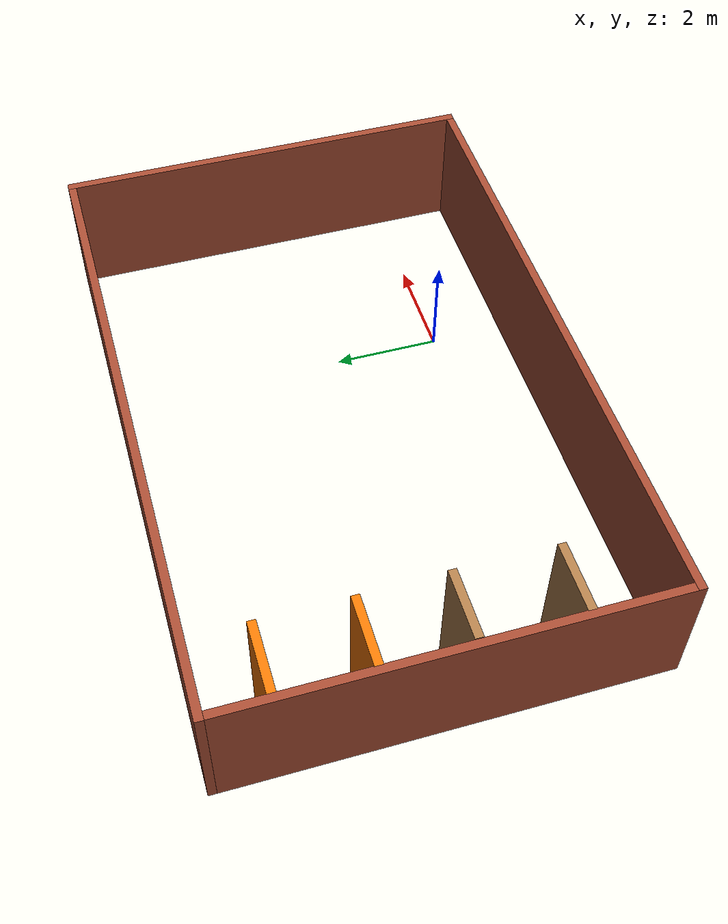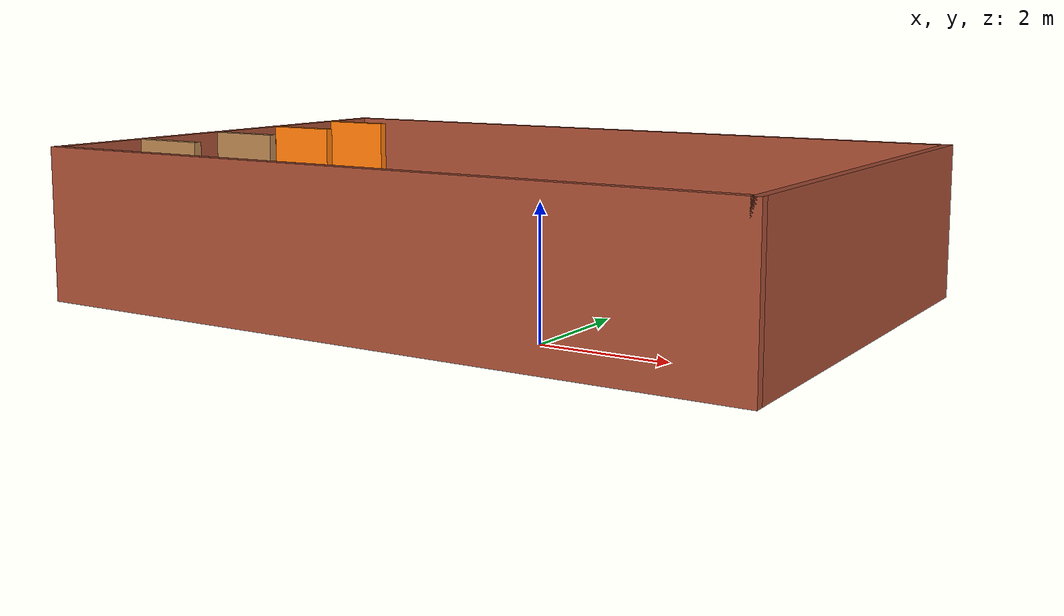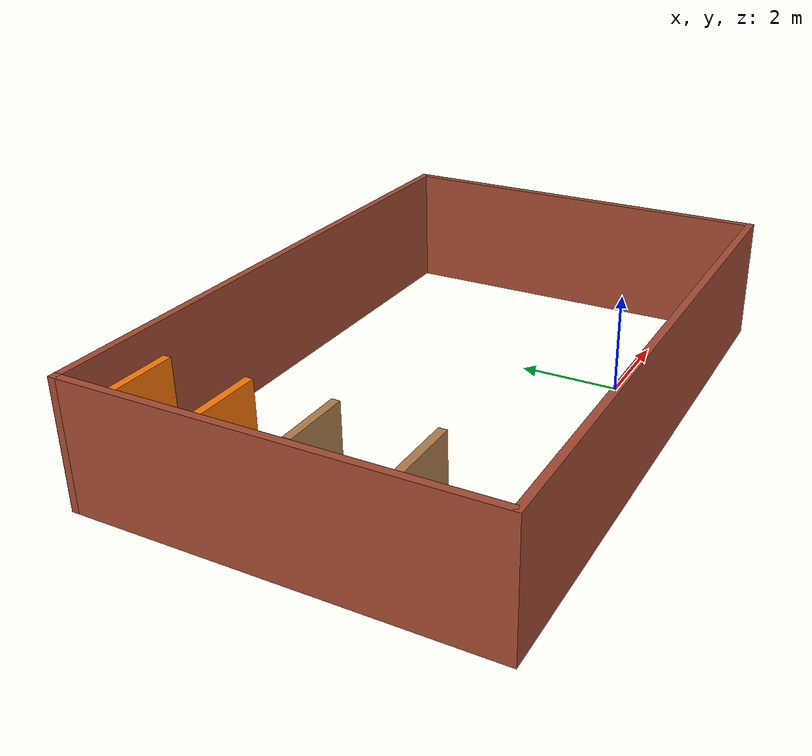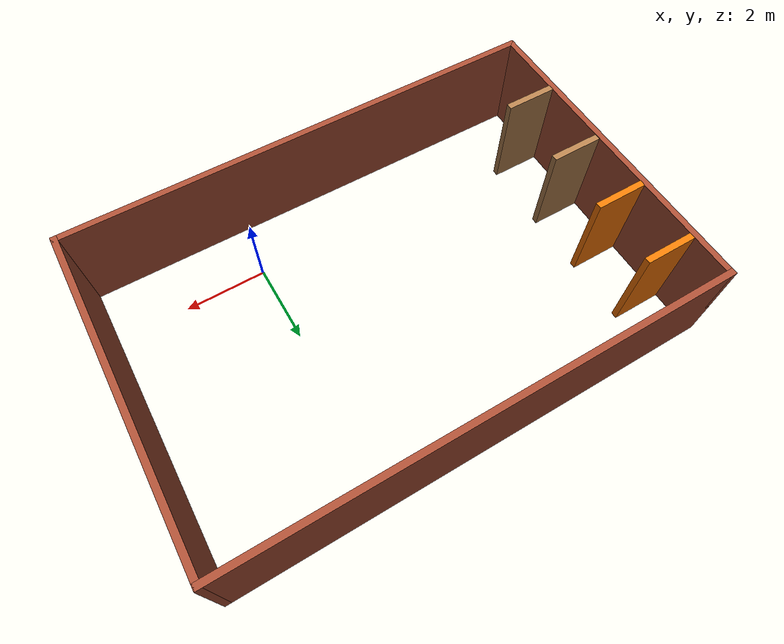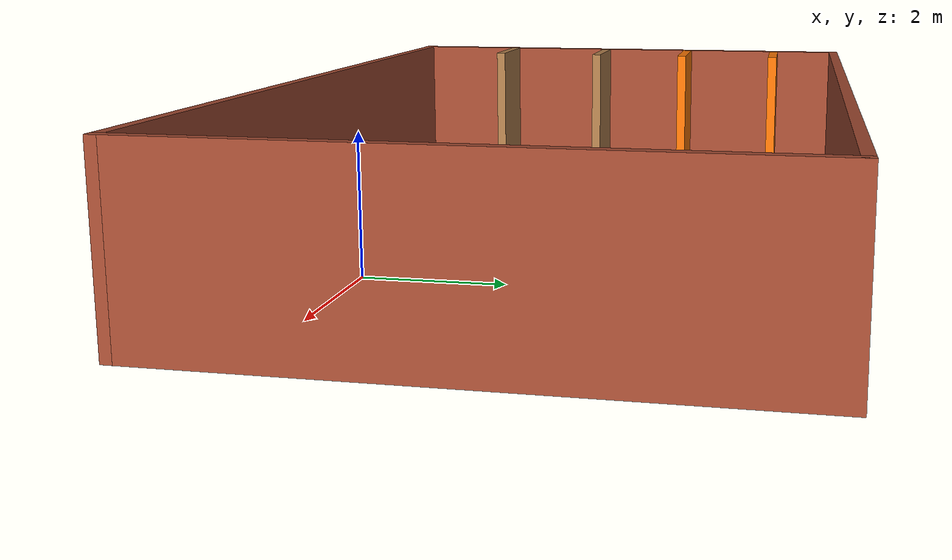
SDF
<?xml version='1.0'?>
<sdf version='1.7'>
  <model name='stockroom_2'>
    <pose>-2.13973 2.45923 0 0 -0 0</pose>
    <link name='Wall_20'>
      <collision name='Wall_20_Collision'>
        <geometry>
          <box>
            <size>1.25 0.15 2.5</size>
          </box>
        </geometry>
        <pose>0 0 1.25 0 -0 0</pose>
      </collision>
      <visual name='Wall_20_Visual'>
        <pose>0 0 1.25 0 -0 0</pose>
        <geometry>
          <box>
            <size>1.25 0.15 2.5</size>
          </box>
        </geometry>
        <material>
          <script>
            <uri>file://media/materials/scripts/gazebo.material</uri>
            <name>Gazebo/Grey</name>
          </script>
          <ambient>0.996078 0.47451 0.0196078 1</ambient>
        </material>
        <meta>
          <layer>0</layer>
        </meta>
      </visual>
      <pose>-5.22732 2.8291 0 0 -0 0</pose>
    </link>
    <link name='Wall_23'>
      <collision name='Wall_23_Collision'>
        <geometry>
          <box>
            <size>1.25 0.15 2.5</size>
          </box>
        </geometry>
        <pose>0 0 1.25 0 -0 0</pose>
      </collision>
      <visual name='Wall_23_Visual'>
        <pose>0 0 1.25 0 -0 0</pose>
        <geometry>
          <box>
            <size>1.25 0.15 2.5</size>
          </box>
        </geometry>
        <material>
          <script>
            <uri>file://media/materials/scripts/gazebo.material</uri>
            <name>Gazebo/Grey</name>
          </script>
          <ambient>0.996078 0.47451 0.0196078 1</ambient>
        </material>
        <meta>
          <layer>0</layer>
        </meta>
      </visual>
      <pose>-5.23648 1.2072 0 0 -0 0</pose>
    </link>
    <link name='Wall_59'>
      <collision name='Wall_59_Collision'>
        <geometry>
          <box>
            <size>8 0.15 2.5</size>
          </box>
        </geometry>
        <pose>0 0 1.25 0 -0 0</pose>
      </collision>
      <visual name='Wall_59_Visual'>
        <pose>0 0 1.25 0 -0 0</pose>
        <geometry>
          <box>
            <size>8 0.15 2.5</size>
          </box>
        </geometry>
        <material>
          <script>
            <uri>file://media/materials/scripts/gazebo.material</uri>
            <name>Gazebo/Bricks</name>
          </script>
          <ambient>1 1 1 1</ambient>
        </material>
        <meta>
          <layer>0</layer>
        </meta>
      </visual>
      <pose>-5.925 0 0 0 -0 -1.5708</pose>
    </link>
    <link name='Wall_6'>
      <collision name='Wall_6_Collision'>
        <geometry>
          <box>
            <size>12 0.15 2.5</size>
          </box>
        </geometry>
        <pose>0 0 1.25 0 -0 0</pose>
      </collision>
      <visual name='Wall_6_Visual'>
        <pose>0 0 1.25 0 -0 0</pose>
        <geometry>
          <box>
            <size>12 0.15 2.5</size>
          </box>
        </geometry>
        <material>
          <script>
            <uri>file://media/materials/scripts/gazebo.material</uri>
            <name>Gazebo/Bricks</name>
          </script>
          <ambient>1 1 1 1</ambient>
        </material>
        <meta>
          <layer>0</layer>
        </meta>
      </visual>
      <pose>0 3.925 0 0 -0 0</pose>
    </link>
    <link name='Wall_61'>
      <collision name='Wall_61_Collision'>
        <geometry>
          <box>
            <size>12 0.15 2.5</size>
          </box>
        </geometry>
        <pose>0 0 1.25 0 -0 0</pose>
      </collision>
      <visual name='Wall_61_Visual'>
        <pose>0 0 1.25 0 -0 0</pose>
        <geometry>
          <box>
            <size>12 0.15 2.5</size>
          </box>
        </geometry>
        <material>
          <script>
            <uri>file://media/materials/scripts/gazebo.material</uri>
            <name>Gazebo/Bricks</name>
          </script>
          <ambient>1 1 1 1</ambient>
        </material>
        <meta>
          <layer>0</layer>
        </meta>
      </visual>
      <pose>0 -3.925 0 0 -0 0</pose>
    </link>
    <link name='Wall_63'>
      <collision name='Wall_63_Collision'>
        <geometry>
          <box>
            <size>1.25 0.15 2.5</size>
          </box>
        </geometry>
        <pose>0 0 1.25 0 -0 0</pose>
      </collision>
      <visual name='Wall_63_Visual'>
        <pose>0 0 1.25 0 -0 0</pose>
        <geometry>
          <box>
            <size>1.25 0.15 2.5</size>
          </box>
        </geometry>
        <material>
          <script>
            <uri>file://media/materials/scripts/gazebo.material</uri>
            <name>Gazebo/Wood</name>
          </script>
          <ambient>1 1 1 1</ambient>
        </material>
        <meta>
          <layer>0</layer>
        </meta>
      </visual>
      <pose>-5.21392 -0.360097 0 0 -0 0</pose>
    </link>
    <link name='Wall_65'>
      <collision name='Wall_65_Collision'>
        <geometry>
          <box>
            <size>1.25 0.15 2.5</size>
          </box>
        </geometry>
        <pose>0 0 1.25 0 -0 0</pose>
      </collision>
      <visual name='Wall_65_Visual'>
        <pose>0 0 1.25 0 -0 0</pose>
        <geometry>
          <box>
            <size>1.25 0.15 2.5</size>
          </box>
        </geometry>
        <material>
          <script>
            <uri>file://media/materials/scripts/gazebo.material</uri>
            <name>Gazebo/Wood</name>
          </script>
          <ambient>1 1 1 1</ambient>
        </material>
        <meta>
          <layer>0</layer>
        </meta>
      </visual>
      <pose>-5.23624 -2.16697 0 0 -0 0</pose>
    </link>
    <link name='Wall_7'>
      <collision name='Wall_7_Collision'>
        <geometry>
          <box>
            <size>8 0.15 2.5</size>
          </box>
        </geometry>
        <pose>0 0 1.25 0 -0 0</pose>
      </collision>
      <visual name='Wall_7_Visual'>
        <pose>0 0 1.25 0 -0 0</pose>
        <geometry>
          <box>
            <size>8 0.15 2.5</size>
          </box>
        </geometry>
        <material>
          <script>
            <uri>file://media/materials/scripts/gazebo.material</uri>
            <name>Gazebo/Bricks</name>
          </script>
          <ambient>1 1 1 1</ambient>
        </material>
        <meta>
          <layer>0</layer>
        </meta>
      </visual>
      <pose>5.925 0 0 0 -0 -1.5708</pose>
    </link>
    <static>1</static>
  </model>
</sdf>
